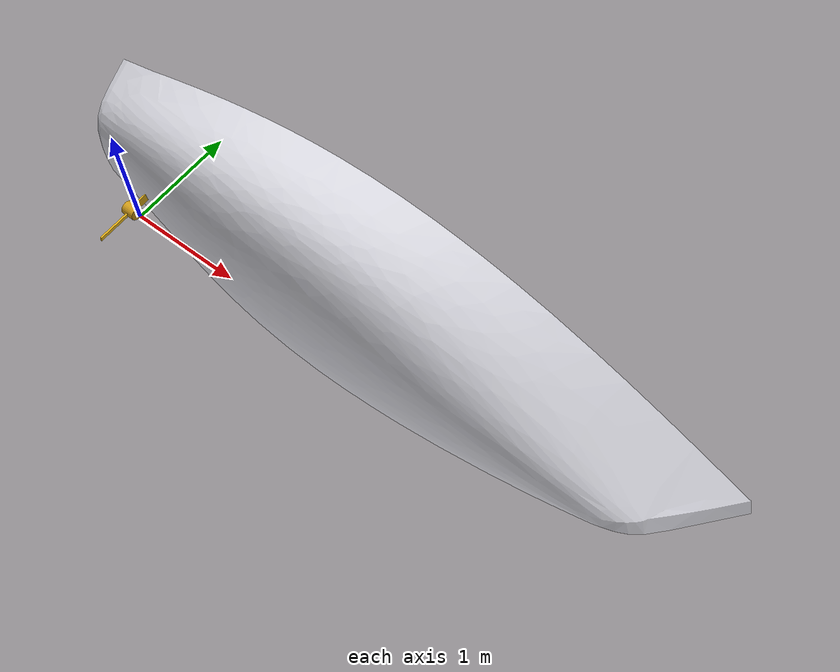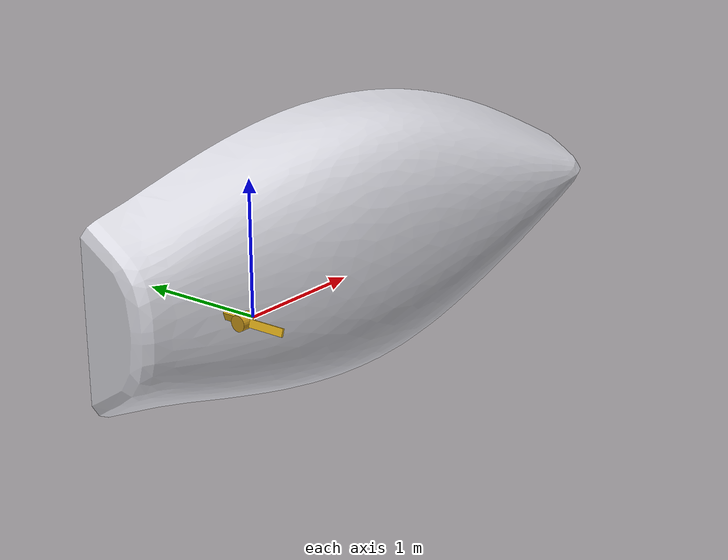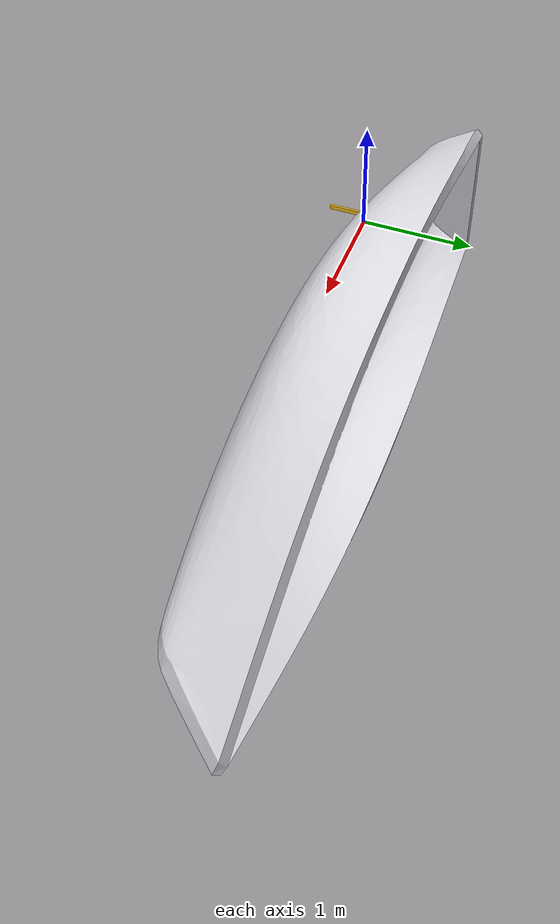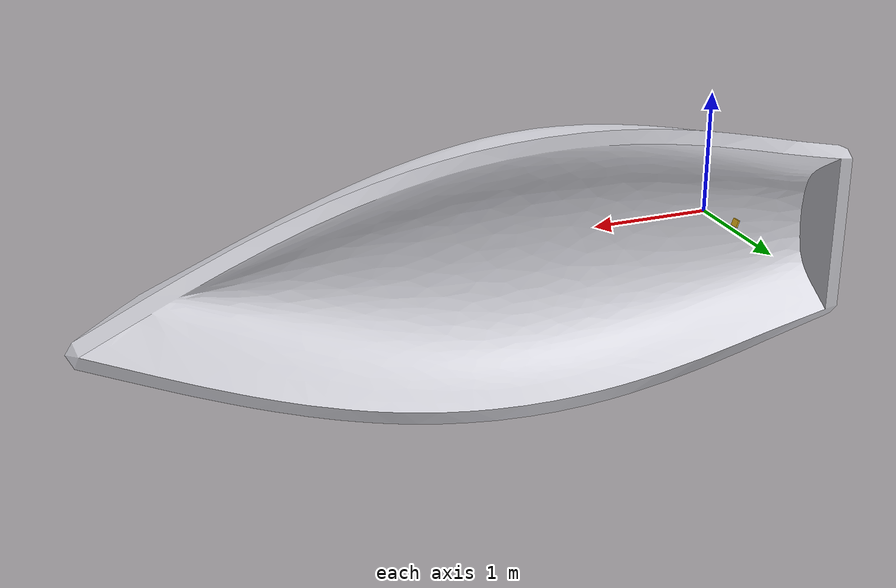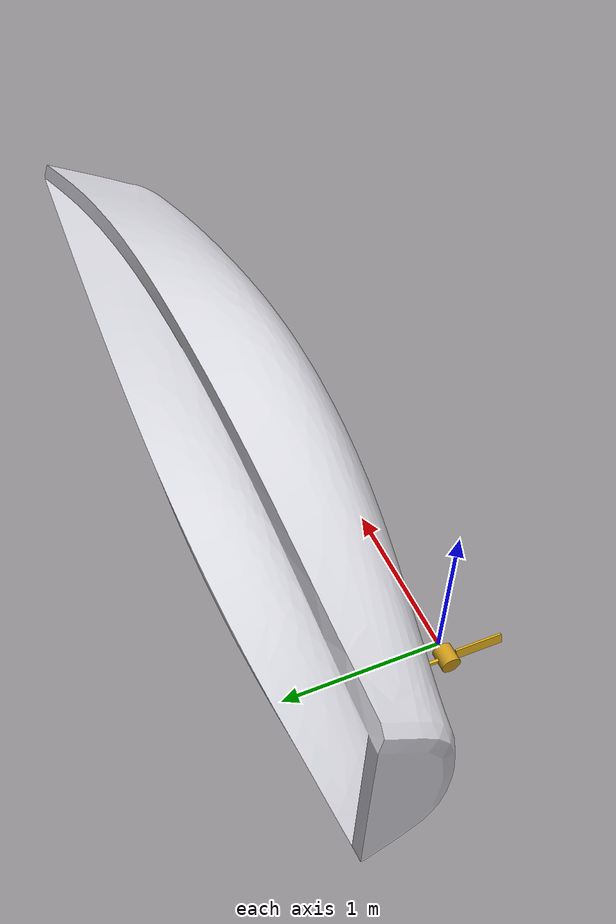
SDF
<?xml version="1.0" ?>
<sdf version="1.6">
  <world name="world">
    <model name="toy_boat">
      <pose>0 0 0 0 0 0</pose>

      <!-- ===================== HULL (base link) ====================== -->
      <link name="base_link">
        <pose>0 0 0 0 0 0</pose>
        <inertial>
          <pose>2.2206 0.3664 0 0 0 0</pose>
          <mass>600.0</mass>
          <inertia>
            <ixx>290.0</ixx>  <ixy>0</ixy> <ixz>0</ixz>
            <iyy>2045.0</iyy> <iyz>0</iyz>
            <izz>1845.0</izz>
          </inertia>
        </inertial>
        <collision name="hull_collision">
          <pose>0 0 0 0 0 0</pose>
          <geometry><mesh><uri>../sdfs/DSYHS/OBJ/hull.obj</uri><scale>0.0026970 0.0026970 0.0026970</scale></mesh></geometry>
        </collision>
        <visual name="hull_visual">
          <pose>0 0 0 0 0 0</pose>
          <geometry><mesh><uri>../sdfs/DSYHS/OBJ/hull.obj</uri><scale>0.0026970 0.0026970 0.0026970</scale></mesh></geometry>
          <material><ambient>0.85 0.85 0.88 1</ambient><diffuse>0.85 0.85 0.88 1</diffuse></material>
        </visual>
      </link>

      <!-- ===================== KEEL (ballast) ======================== -->
      <link name="keel_link">
        <pose>0 0 0 0 0 0</pose>
        <inertial>
          <pose>2.4653 -0.2729 0 0 0 0</pose>
          <mass>180.0</mass>
          <inertia>
            <ixx>5.64</ixx>  <ixy>0</ixy> <ixz>0</ixz>
            <iyy>29.8</iyy>  <iyz>0</iyz>
            <izz>34.6</izz>
          </inertia>
        </inertial>
        <collision name="keel_collision">
          <pose>0 0 0 0 0 0</pose>
          <geometry><mesh><uri>../sdfs/DSYHS/OBJ/keel.obj</uri><scale>0.0026970 0.0026970 0.0026970</scale></mesh></geometry>
        </collision>
        <visual name="keel_visual">
          <pose>0 0 0 0 0 0</pose>
          <geometry><mesh><uri>../sdfs/DSYHS/OBJ/keel.obj</uri><scale>0.0026970 0.0026970 0.0026970</scale></mesh></geometry>
          <material><ambient>0.6 0.6 0.62 1</ambient><diffuse>0.6 0.6 0.62 1</diffuse></material>
        </visual>
      </link>

      <!-- ===================== RUDDER ================================ -->
      <link name="rudder_link">
        <pose>0 0 0 0 0 0</pose>
        <inertial>
          <pose>-0.2113 0.0233 0 0 0 0</pose>
          <mass>20.0</mass>
          <inertia>
            <ixx>0.86</ixx>  <ixy>0</ixy> <ixz>0</ixz>
            <iyy>0.20</iyy>  <iyz>0</iyz>
            <izz>1.06</izz>
          </inertia>
        </inertial>
        <collision name="rudder_collision">
          <pose>0 0 0 0 0 0</pose>
          <geometry><mesh><uri>../sdfs/DSYHS/OBJ/rudder.obj</uri><scale>0.0026970 0.0026970 0.0026970</scale></mesh></geometry>
        </collision>
        <visual name="rudder_visual">
          <pose>0 0 0 0 0 0</pose>
          <geometry><mesh><uri>../sdfs/DSYHS/OBJ/rudder.obj</uri><scale>0.0026970 0.0026970 0.0026970</scale></mesh></geometry>
          <material><ambient>0.7 0.2 0.15 1</ambient><diffuse>0.7 0.2 0.15 1</diffuse></material>
        </visual>
      </link>

      <!-- Rigid welds attaching keel + rudder to the hull -->
      <joint name="joint_keel" type="fixed">
        <parent>base_link</parent><child>keel_link</child><pose>0 0 0 0 0 0</pose>
      </joint>
      <joint name="joint_rudder" type="fixed">
        <parent>base_link</parent><child>rudder_link</child><pose>0 0 0 0 0 0</pose>
      </joint>

      <link name="propeller_hub">
        <pose>-0.1 0.0 0.0 0 0 0</pose>
        <inertial><pose>0 0 0 0 0 0</pose><mass>1.3572</mass>
          <inertia><ixx>0.002443</ixx><ixy>0</ixy><ixz>0</ixz><iyy>0.002851</iyy><iyz>0</iyz><izz>0.002851</izz></inertia></inertial>
        <collision name="propeller_hub_collision"><pose>0 0 0 0 1.5707963267948966 0</pose>
          <geometry><cylinder><radius>0.06</radius><length>0.12</length></cylinder></geometry></collision>
        <visual name="propeller_hub_visual"><pose>0 0 0 0 1.5707963267948966 0</pose>
          <geometry><cylinder><radius>0.06</radius><length>0.12</length></cylinder></geometry>
          <material><ambient>0.8 0.6 0.1 1</ambient><diffuse>0.8 0.6 0.1 1</diffuse><specular>0.4 0.4 0.4 1</specular></material></visual>
      </link>

      <link name="blade_0">
        <pose>-0.1 -0.21 0.0 0 0.3 0</pose>
        <inertial><pose>0 0 0 0 0 0</pose><mass>0.27</mass>
          <inertia><ixx>0.002106</ixx><ixy>0</ixy><ixz>0</ixz><iyy>0.000086</iyy><iyz>0</iyz><izz>0.002030</izz></inertia></inertial>
        <collision name="blade_0_collision"><pose>0 0 0 0 0 0</pose>
          <geometry><box><size>0.015 0.30 0.06</size></box></geometry></collision>
        <visual name="blade_0_visual"><pose>0 0 0 0 0 0</pose>
          <geometry><box><size>0.015 0.30 0.06</size></box></geometry>
          <material><ambient>0.9 0.7 0.1 1</ambient><diffuse>0.9 0.7 0.1 1</diffuse><specular>0.4 0.4 0.4 1</specular></material></visual>
      </link>

      <link name="blade_1">
        <pose>-0.1 0.21 0.0 0 -0.3 0</pose>
        <inertial><pose>0 0 0 0 0 0</pose><mass>0.27</mass>
          <inertia><ixx>0.002106</ixx><ixy>0</ixy><ixz>0</ixz><iyy>0.000086</iyy><iyz>0</iyz><izz>0.002030</izz></inertia></inertial>
        <collision name="blade_1_collision"><pose>0 0 0 0 0 0</pose>
          <geometry><box><size>0.015 0.30 0.06</size></box></geometry></collision>
        <visual name="blade_1_visual"><pose>0 0 0 0 0 0</pose>
          <geometry><box><size>0.015 0.30 0.06</size></box></geometry>
          <material><ambient>0.9 0.7 0.1 1</ambient><diffuse>0.9 0.7 0.1 1</diffuse><specular>0.4 0.4 0.4 1</specular></material></visual>
      </link>

      <joint name="joint_propeller" type="revolute">
        <parent>base_link</parent><child>propeller_hub</child><pose>0 0 0 0 0 0</pose>
        <axis><xyz>1 0 0</xyz><limit><lower>-1e16</lower><upper>1e16</upper></limit></axis>
      </joint>
      <joint name="joint_blade_0" type="fixed"><parent>propeller_hub</parent><child>blade_0</child><pose>0 0 0 0 0 0</pose></joint>
      <joint name="joint_blade_1" type="fixed"><parent>propeller_hub</parent><child>blade_1</child><pose>0 0 0 0 0 0</pose></joint>

    </model>
  </world>
</sdf>
